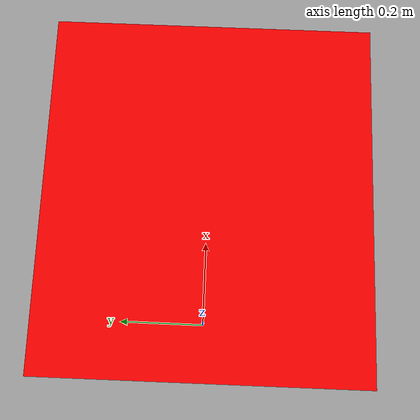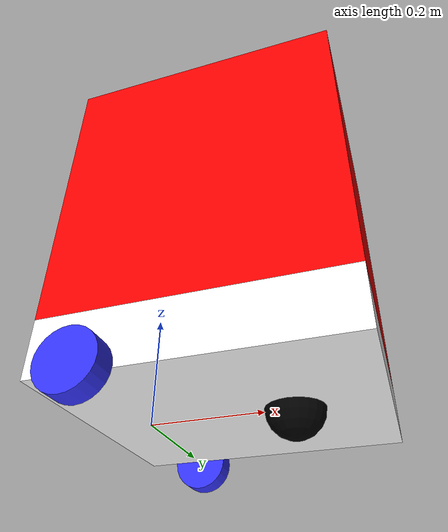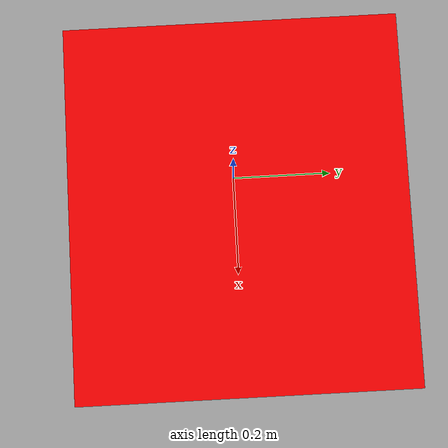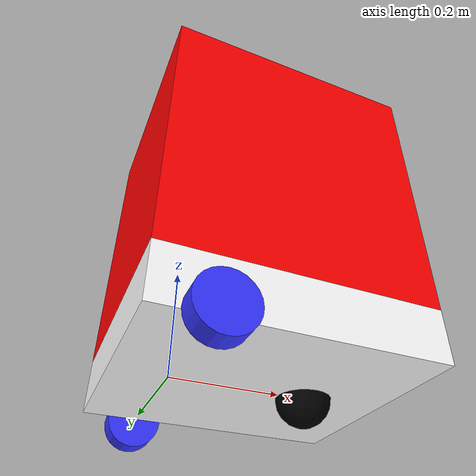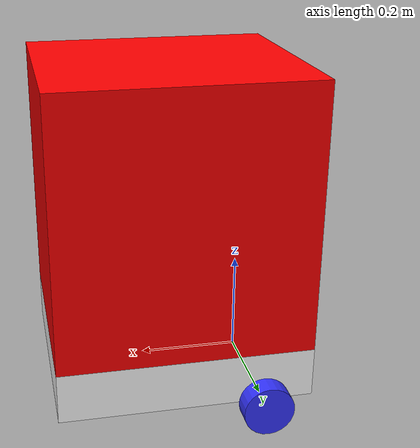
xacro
<?xml version="1.0"?>
<robot xmlns:xacro="http://www.ros.org/wiki/xacro" >

  <xacro:include filename="inertial_macros.xacro"/>

    <material name="white">
        <color rgba="1 1 1 1" />
    </material>

    <material name="orange">
        <color rgba="1 0.3 0.1 1"/>
    </material>

    <material name="blue">
        <color rgba="0.2 0.2 1 1"/>
    </material>

    <material name="black">
        <color rgba="0 0 0 1"/>
    </material>

     <material name="red">
        <color rgba="1 0 0 1"/>
    </material>

    <!-- BASE LINK -->

    <link name="base_link">

    </link>

    <!-- CHASSIS LINK -->

    <joint name="chassis_joint" type="fixed">
        <parent link="base_link"/>
        <child link="chassis"/>
        <origin xyz="-0.1 0 0"/>
    </joint>

    <link name="chassis">
        <visual>
            <origin xyz="0.25 0 0.05"/>
            <geometry>
                <box size="0.5 0.45 0.1"/>
            </geometry>
            <material name="white"/>
        </visual>

         <collision>
            <origin xyz="0.25 0 0.05"/>
            <geometry>
                <box size="0.5 0.45 0.1"/>
            </geometry>
        </collision>
        <xacro:inertial_box mass="1.0" x="0.5" y="0.45" z="0.1">
            <origin xyz="0.25 0 0.05" rpy="0 0 0"/>
        </xacro:inertial_box>

    </link>

    <gazebo reference="chassis">
        <material>Gazebo/White</material>
    </gazebo>

    <!-- ref -->

    <joint name="ref_joint" type="fixed">
        <parent link="chassis"/>
        <child link="ref"/>
        <origin xyz="0 0 0.1"/>
    </joint>

    <link name="ref">
        <visual>
            <origin xyz="0.25 0 0.265"/>
            <geometry>
                <box size="0.5 0.45 0.53"/>
            </geometry>
            <material name="red"/>
        </visual>

         <collision>
            <origin xyz="0.25 0 0.265"/>
            <geometry>
                <box size="0.5 0.45 0.53"/>
            </geometry>
        </collision>
        <xacro:inertial_box mass="25.0" x="0.5" y="0.45" z="0.53">
            <origin xyz="0.25 0 0.265" rpy="0 0 0"/>
        </xacro:inertial_box>

    </link>

    <gazebo reference="ref">
        <material>Gazebo/Red</material>
    </gazebo>

    <!-- LEFT WHEEL LINK -->

    <joint name="left_wheel_joint" type="continuous">
        <parent link="base_link"/>
        <child link="left_wheel"/>
        <origin xyz="0 0.250 0" rpy="-${pi/2} 0 0" />
        <axis xyz="0 0 1"/>
    </joint>

    <link name="left_wheel">
        <visual>
            <geometry>
                <cylinder radius="0.05" length="0.04"/>
            </geometry>
            <material name="blue"/>
        </visual>
        <collision>
            <geometry>
                <cylinder radius="0.05" length="0.04"/>
            </geometry>
        </collision>
        <xacro:inertial_cylinder mass="0.1" length="0.04" radius="0.05">
            <origin xyz="0 0 0" rpy="0 0 0"/>
        </xacro:inertial_cylinder>
    </link>

    <gazebo reference="left_wheel">
        <material>Gazebo/Blue</material>
    </gazebo>

    <!-- RIGHT WHEEL LINK -->

    <joint name="right_wheel_joint" type="continuous">
        <parent link="base_link"/>
        <child link="right_wheel"/>
        <origin xyz="0 -0.250 0" rpy="${pi/2} 0 0" />
        <axis xyz="0 0 -1"/>
    </joint>

    <link name="right_wheel">
        <visual>
            <geometry>
                <cylinder radius="0.05" length="0.04"/>
            </geometry>
            <material name="blue"/>
        </visual>
        <collision>
            <geometry>
                <cylinder radius="0.05" length="0.04"/>
            </geometry>
        </collision>
        <xacro:inertial_cylinder mass="0.1" length="0.04" radius="0.05">
            <origin xyz="0 0 0" rpy="0 0 0"/>
        </xacro:inertial_cylinder>
    </link>

    <gazebo reference="right_wheel">
        <material>Gazebo/Blue</material>
    </gazebo>

  <!-- CASTER WHEEL LINK -->

    <joint name="caster_wheel_joint" type="fixed">
        <parent link="chassis"/>
        <child link="caster_wheel"/>
        <origin xyz="0.35 0 0"/>
    </joint>

    <link name="caster_wheel">
        <visual>
            <geometry>
                <sphere radius="0.05"/>
            </geometry>
            <material name="black"/>
        </visual>
        <collision>
            <geometry>
                <sphere radius="0.05"/>
            </geometry>
        </collision>
        <xacro:inertial_sphere mass="0.1" radius="0.05">
            <origin xyz="0 0 0" rpy="0 0 0"/>
        </xacro:inertial_sphere>
    </link>

    <gazebo reference="caster_wheel">
        <material>Gazebo/Black</material>
        <mu1 value="0.001"/>
        <mu2 value="0.001"/>
    </gazebo>

</robot>
